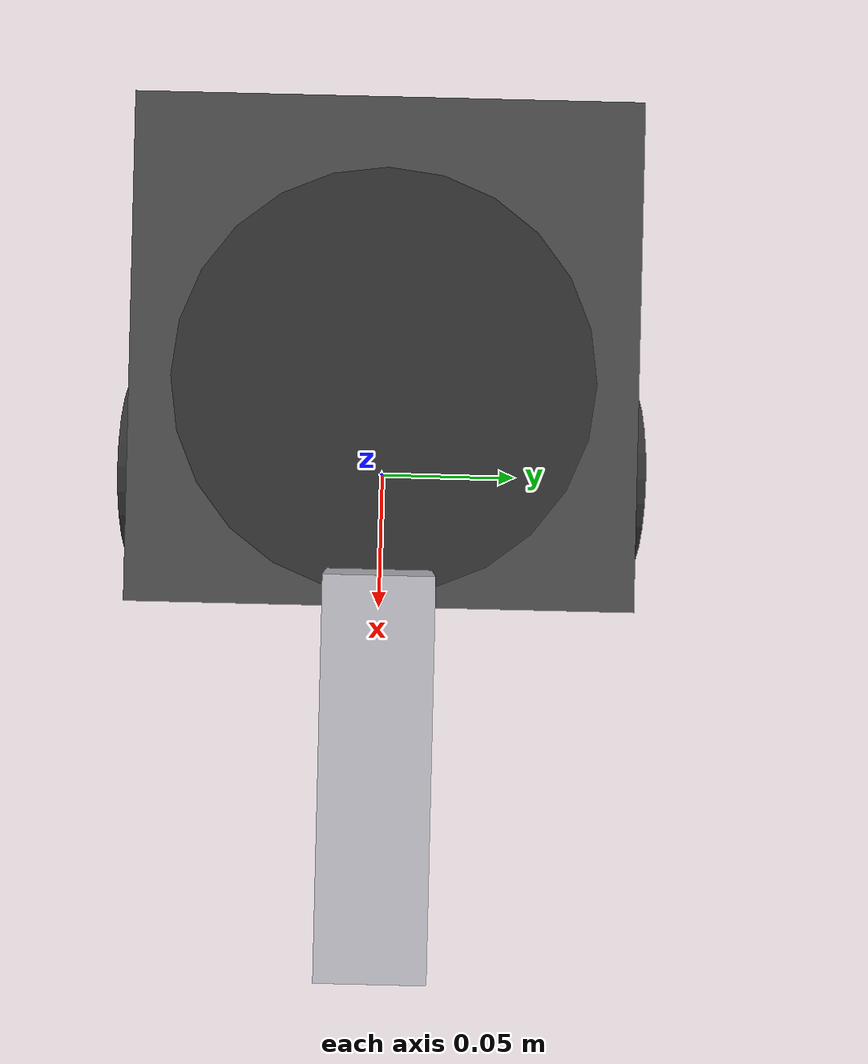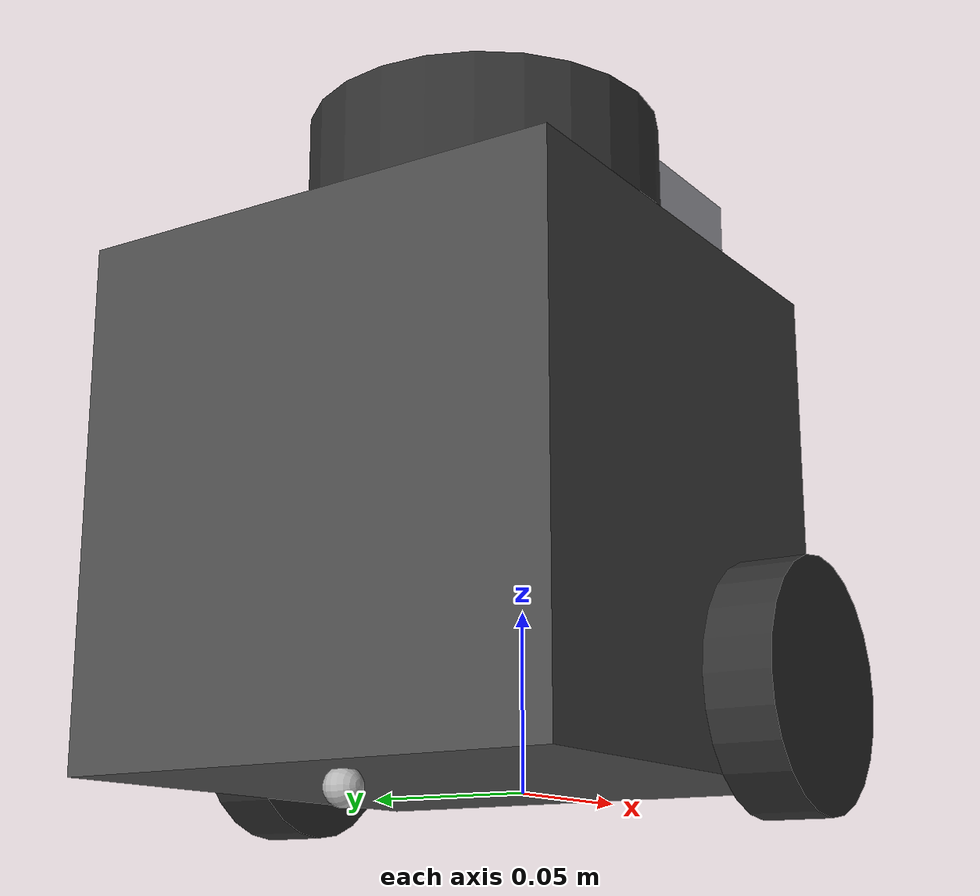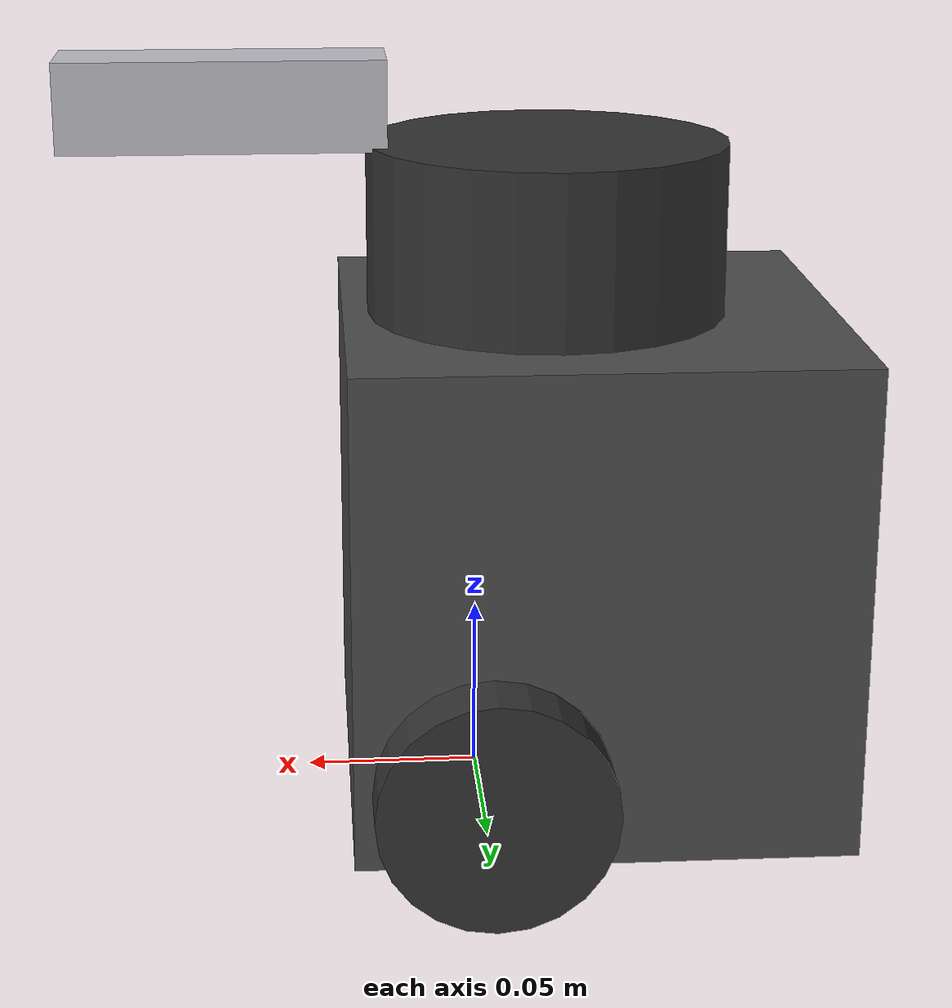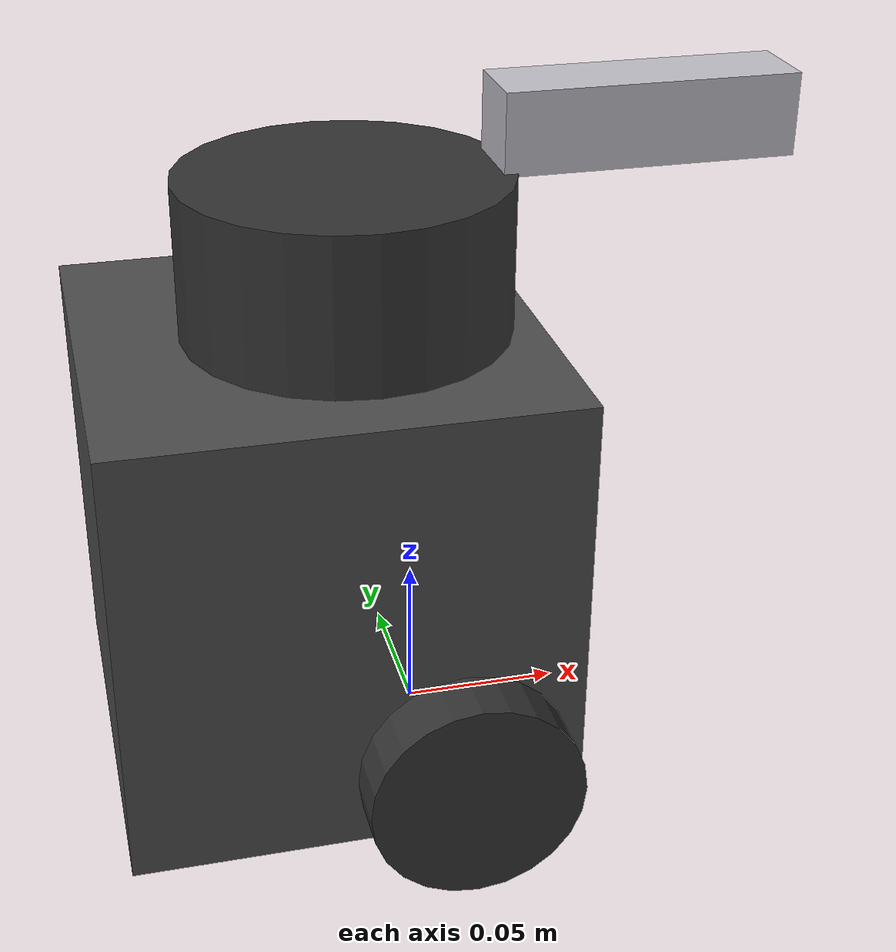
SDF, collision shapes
<?xml version="1.0" ?>
<sdf version="1.5">
  <model name="turtlebot3_burger_with_realsense">
    <pose>0.0 0.0 0.0 0.0 0.0 0.0</pose>

    <link name="base_footprint"/>

    <link name="base_link">
      <inertial>
        <pose>-0.032 0 0.070 0 0 0</pose>
        <inertia>
          <ixx>7.2397393e-01</ixx>
          <ixy>4.686399e-10</ixy>
          <ixz>-1.09525703e-08</ixz>
          <iyy>7.2397393e-01</iyy>
          <iyz>2.8582649e-09</iyz>
          <izz>6.53050163e-01</izz>
        </inertia>
        <mass>8.2573504e-01</mass>
      </inertial>
      <collision name="base_collision">
        <pose>-0.032 0 0.070 0 0 0</pose>
        <geometry>
          <box>
            <size>0.140 0.140 0.140</size>
          </box>
        </geometry>
      </collision>
      <visual name="base_visual">
        <pose>-0.032 0 0 0 0 0</pose>
        <geometry>
          <mesh>
            <uri>model://turtlebot3_common/meshes/bases/burger_base.stl</uri>
            <scale>0.001 0.001 0.001</scale>
          </mesh>
        </geometry>
        <material>
          <ambient>0.3 0.3 0.3 1.0</ambient>
          <diffuse>0.3 0.3 0.3 1.0</diffuse>
        </material>
      </visual>
    </link>

    <link name="imu_link">
      <sensor name="tb3_imu" type="imu">
        <always_on>true</always_on>
        <update_rate>200</update_rate>
        <imu>
          <angular_velocity>
            <x>
              <noise type="gaussian">
                <mean>0.0</mean>
                <stddev>2e-4</stddev>
              </noise>
            </x>
            <y>
              <noise type="gaussian">
                <mean>0.0</mean>
                <stddev>2e-4</stddev>
              </noise>
            </y>
            <z>
              <noise type="gaussian">
                <mean>0.0</mean>
                <stddev>2e-4</stddev>
              </noise>
            </z>
          </angular_velocity>
          <linear_acceleration>
            <x>
              <noise type="gaussian">
                <mean>0.0</mean>
                <stddev>1.7e-2</stddev>
              </noise>
            </x>
            <y>
              <noise type="gaussian">
                <mean>0.0</mean>
                <stddev>1.7e-2</stddev>
              </noise>
            </y>
            <z>
              <noise type="gaussian">
                <mean>0.0</mean>
                <stddev>1.7e-2</stddev>
              </noise>
            </z>
          </linear_acceleration>
        </imu>
        <plugin name="turtlebot3_imu" filename="libgazebo_ros_imu_sensor.so">
          <ros>
            <argument>--ros.remap ~/out:=imu</argument>
          </ros>
        </plugin>
      </sensor>
    </link>

    <link name="base_scan">
      <inertial>
        <pose>-0.020 0 0.161 0 0 0</pose>
        <inertia>
          <ixx>0.001</ixx>
          <ixy>0.000</ixy>
          <ixz>0.000</ixz>
          <iyy>0.001</iyy>
          <iyz>0.000</iyz>
          <izz>0.001</izz>
        </inertia>
        <mass>0.114</mass>
      </inertial>
      <collision name="lidar_sensor_collision">
        <pose>-0.020 0 0.161 0 0 0</pose>
        <geometry>
          <cylinder>
            <radius>0.0508</radius>
            <length>0.055</length>
          </cylinder>
        </geometry>
      </collision>
      <visual name="lidar_sensor_visual">
        <pose>-0.032 0 0.171 0 0 0</pose>
        <geometry>
          <mesh>
            <uri>model://turtlebot3_common/meshes/sensors/lds.stl</uri>
            <scale>0.001 0.001 0.001</scale>
          </mesh>
        </geometry>
        <material>
          <ambient>0.2 0.2 0.2 1.0</ambient>
          <diffuse>0.2 0.2 0.2 1.0</diffuse>
        </material>
      </visual>
      <sensor name="hls_lfcd_lds" type="ray">
        <always_on>true</always_on>
        <visualize>true</visualize>
        <pose>-0.032 0 0.171 0 0 0</pose>
        <update_rate>5</update_rate>
        <ray>
          <scan>
            <horizontal>
              <samples>360</samples>
              <resolution>1.000000</resolution>
              <min_angle>0.000000</min_angle>
              <max_angle>6.280000</max_angle>
            </horizontal>
          </scan>
          <range>
            <min>0.120000</min>
            <max>3.5</max>
            <resolution>0.015000</resolution>
          </range>
          <noise>
            <type>gaussian</type>
            <mean>0.0</mean>
            <stddev>0.01</stddev>
          </noise>
        </ray>
        <plugin name="turtlebot3_laserscan" filename="libgazebo_ros_ray_sensor.so">
          <ros>
            <argument>--ros.remap ~/out:=scan</argument>
          </ros>
          <output_type>sensor_msgs/LaserScan</output_type>
          <frame_name>base_scan</frame_name>
        </plugin>
      </sensor>
    </link>

    <link name="wheel_left_link">
      <inertial>
        <pose>0 0.08 0.023 -1.57 0 0</pose>
        <inertia>
          <ixx>1.8158194e-03</ixx>
          <ixy>-9.3392e-12</ixy>
          <ixz>1.04909e-11</ixz>
          <iyy>3.2922126e-03</iyy>
          <iyz>5.75694e-11</iyz>
          <izz>1.8158194e-03</izz>
        </inertia>
        <mass>2.8498940e-02</mass>
      </inertial>
      <collision name="wheel_left_collision">
        <pose>0 0.08 0.023 -1.57 0 0</pose>
        <geometry>
          <cylinder>
            <radius>0.033</radius>
            <length>0.018</length>
          </cylinder>
        </geometry>
        <surface>
          <friction>
            <ode>
              <mu>100000.0</mu>
              <mu2>100000.0</mu2>
              <fdir1>0 0 0</fdir1>
              <slip1>0.0</slip1>
              <slip2>0.0</slip2>
            </ode>
          </friction>
          <contact>
            <ode>
              <soft_cfm>0</soft_cfm>
              <soft_erp>0.2</soft_erp>
              <kp>1e+5</kp>
              <kd>1</kd>
              <max_vel>0.01</max_vel>
              <min_depth>0.001</min_depth>
            </ode>
          </contact>
        </surface>
      </collision>
      <visual name="wheel_left_visual">
        <pose>0 0.08 0.023 0 0 0</pose>
        <geometry>
          <mesh>
            <uri>model://turtlebot3_common/meshes/wheels/left_tire.stl</uri>
            <scale>0.001 0.001 0.001</scale>
          </mesh>
        </geometry>
        <material>
          <ambient>0.2 0.2 0.2 1.0</ambient>
          <diffuse>0.2 0.2 0.2 1.0</diffuse>
        </material>
      </visual>
    </link>

    <link name="wheel_right_link">
      <inertial>
        <pose>0.0 -0.08 0.023 -1.57 0 0</pose>
        <inertia>
          <ixx>1.8158194e-03</ixx>
          <ixy>-9.3392e-12</ixy>
          <ixz>1.04909e-11</ixz>
          <iyy>3.2922126e-03</iyy>
          <iyz>5.75694e-11</iyz>
          <izz>1.8158194e-03</izz>
        </inertia>
        <mass>2.8498940e-02</mass>
      </inertial>
      <collision name="wheel_right_collision">
        <pose>0.0 -0.08 0.023 -1.57 0 0</pose>
        <geometry>
          <cylinder>
            <radius>0.033</radius>
            <length>0.018</length>
          </cylinder>
        </geometry>
        <surface>
          <friction>
            <ode>
              <mu>100000.0</mu>
              <mu2>100000.0</mu2>
              <fdir1>0 0 0</fdir1>
              <slip1>0.0</slip1>
              <slip2>0.0</slip2>
            </ode>
          </friction>
          <contact>
            <ode>
              <soft_cfm>0</soft_cfm>
              <soft_erp>0.2</soft_erp>
              <kp>1e+5</kp>
              <kd>1</kd>
              <max_vel>0.01</max_vel>
              <min_depth>0.001</min_depth>
            </ode>
          </contact>
        </surface>
      </collision>
      <visual name="wheel_right_visual">
        <pose>0.0 -0.08 0.023 0 0 0</pose>
        <geometry>
          <mesh>
            <uri>model://turtlebot3_common/meshes/wheels/right_tire.stl</uri>
            <scale>0.001 0.001 0.001</scale>
          </mesh>
        </geometry>
        <material>
          <ambient>0.2 0.2 0.2 1.0</ambient>
          <diffuse>0.2 0.2 0.2 1.0</diffuse>
        </material>
      </visual>
    </link>

    <link name='caster_back_link'>
      <pose>-0.081 0 -0.004 -1.57 0 0</pose>
      <inertial>
        <mass>0.005</mass>
        <inertia>
          <ixx>0.001</ixx>
          <ixy>0.000</ixy>
          <ixz>0.000</ixz>
          <iyy>0.001</iyy>
          <iyz>0.000</iyz>
          <izz>0.001</izz>
        </inertia>
      </inertial>
      <collision name='collision'>
        <geometry>
          <sphere>
            <radius>0.005000</radius>
          </sphere>
        </geometry>
        <surface>
          <contact>
            <ode>
              <soft_cfm>0</soft_cfm>
              <soft_erp>0.2</soft_erp>
              <kp>1e+5</kp>
              <kd>1</kd>
              <max_vel>0.01</max_vel>
              <min_depth>0.001</min_depth>
            </ode>
          </contact>
        </surface>
      </collision>
    </link>

    <!-- RealSense D435 Camera Link -->
    <link name="realsense_link">
      <pose>0.07 0 0.20 0 0 0</pose>
      <inertial>
        <mass>0.072</mass>
        <inertia>
          <ixx>0.0001</ixx>
          <iyy>0.0001</iyy>
          <izz>0.0001</izz>
        </inertia>
      </inertial>
      <visual>
        <geometry>
          <box>
            <size>0.09 0.025 0.025</size>
          </box>
        </geometry>
        <material>
          <script>
            <uri>file://media/materials/scripts/gazebo.material</uri>
            <name>Gazebo/Silver</name>
          </script>
        </material>
      </visual>
      <collision>
        <geometry>
          <box>
            <size>0.09 0.025 0.025</size>
          </box>
        </geometry>
      </collision>
    </link>

    <!-- RealSense RGB Camera Sensor -->
    <link name="realsense_rgb_link">
      <pose>0.07 0 0.20 0 0 0</pose>
      <sensor name="realsense_rgb" type="camera">
        <pose>0 0 0 0 0 0</pose>
        <camera>
          <horizontal_fov>1.518</horizontal_fov>
          <image>
            <width>640</width>
            <height>480</height>
            <format>R8G8B8</format>
          </image>
          <clip>
            <near>0.1</near>
            <far>10</far>
          </clip>
        </camera>
        <always_on>true</always_on>
        <update_rate>30</update_rate>
        <plugin name="realsense_rgb_plugin" filename="libgazebo_ros_camera.so">
          <ros>
            <namespace>/realsense</namespace>
            <argument>--ros.remap /image_raw:=/color/image_raw</argument>
            <argument>--ros.remap /camera_info:=/color/camera_info</argument>
          </ros>
          <frame_name>realsense_link</frame_name>
        </plugin>
        <visualize>true</visualize>
      </sensor>
    </link>

    <joint name="base_joint" type="fixed">
      <parent>base_footprint</parent>
      <child>base_link</child>
      <pose>0.0 0.0 0.010 0 0 0</pose>
    </joint>

    <joint name="wheel_left_joint" type="revolute">
      <parent>base_link</parent>
      <child>wheel_left_link</child>
      <pose>0.0 0.08 0.023 -1.57 0 0</pose>
      <axis>
        <xyz>0 0 1</xyz>
      </axis>
    </joint>

    <joint name="wheel_right_joint" type="revolute">
      <parent>base_link</parent>
      <child>wheel_right_link</child>
      <pose>0.0 -0.08 0.023 -1.57 0 0</pose>
      <axis>
        <xyz>0 0 1</xyz>
      </axis>
    </joint>

    <joint name='caster_back_joint' type='ball'>
      <parent>base_link</parent>
      <child>caster_back_link</child>
    </joint>

    <joint name="imu_joint" type="fixed">
      <parent>base_link</parent>
      <child>imu_link</child>
      <pose>-0.032 0 0.068 0 0 0</pose>
      <axis>
        <xyz>0 0 1</xyz>
      </axis>
    </joint>

    <joint name="lidar_joint" type="fixed">
      <parent>base_link</parent>
      <child>base_scan</child>
      <pose>-0.032 0 0.171 0 0 0</pose>
      <axis>
        <xyz>0 0 1</xyz>
      </axis>
    </joint>

    <joint name="realsense_joint" type="fixed">
      <parent>base_link</parent>
      <child>realsense_link</child>
      <pose>0.07 0 0.20 0 0 0</pose>
    </joint>

    <joint name="realsense_rgb_joint" type="fixed">
      <parent>realsense_link</parent>
      <child>realsense_rgb_link</child>
    </joint>

    <plugin name="turtlebot3_diff_drive" filename="libgazebo_ros_diff_drive.so">
      <ros>
      </ros>
      <update_rate>30</update_rate>
      <left_joint>wheel_left_joint</left_joint>
      <right_joint>wheel_right_joint</right_joint>
      <wheel_separation>0.160</wheel_separation>
      <wheel_diameter>0.066</wheel_diameter>
      <max_wheel_torque>20</max_wheel_torque>
      <max_wheel_acceleration>1.0</max_wheel_acceleration>
      <command_topic>cmd_vel</command_topic>
      <publish_odom>true</publish_odom>
      <publish_odom_tf>true</publish_odom_tf>
      <publish_wheel_tf>false</publish_wheel_tf>
      <odometry_topic>odom</odometry_topic>
      <odometry_frame>odom</odometry_frame>
      <robot_base_frame>base_footprint</robot_base_frame>
    </plugin>

    <plugin name="turtlebot3_joint_state" filename="libgazebo_ros_joint_state_publisher.so">
      <ros>
        <argument>--ros.remap ~/out:=joint_states</argument>
      </ros>
      <update_rate>30</update_rate>
      <joint_name>wheel_left_joint</joint_name>
      <joint_name>wheel_right_joint</joint_name>
    </plugin>
  </model>
</sdf>
